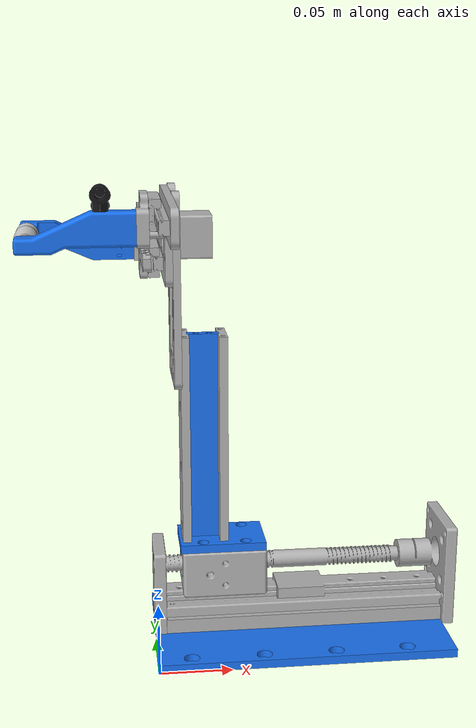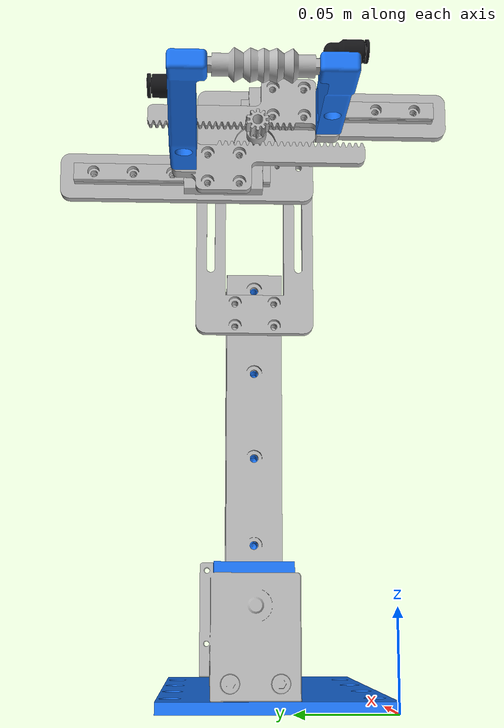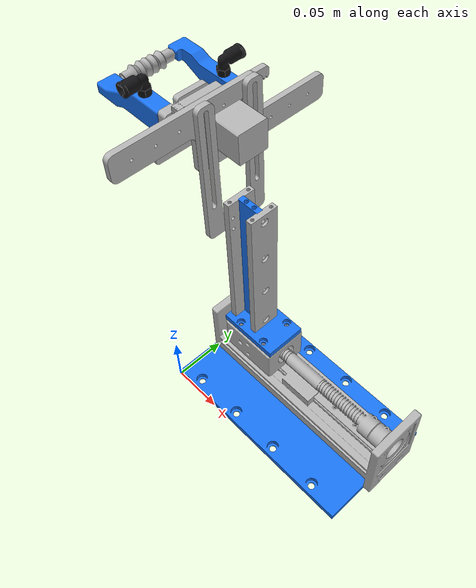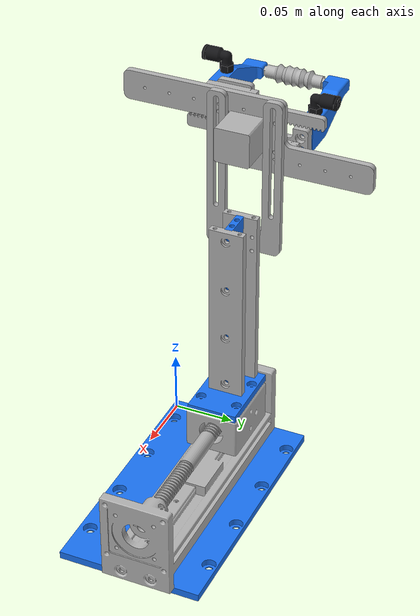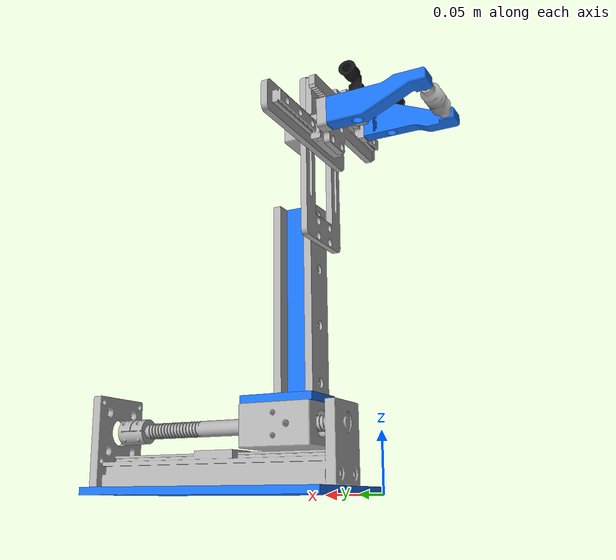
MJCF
<mujoco model="석션V1">
  <compiler angle="radian" />

  <asset>
    <mesh name="base_link" content_type="model/stl" file="meshes/base_link_ss.obj" scale="0.001 0.001 0.001" />
    <mesh name="LSM-NK174218-1204_100MM__1" content_type="model/stl" file="meshes/LSM-NK174218-1204_100MM__1_ss.obj" scale="0.001 0.001 0.001" />
    <mesh name="Dummy_1" content_type="model/stl" file="meshes/Dummy_1_ss.obj" scale="0.001 0.001 0.001" />
    <mesh name="Hbeam_B_1" content_type="model/stl" file="meshes/Hbeam_B_1_ss.obj" scale="0.001 0.001 0.001" />
    <mesh name="Hbeam_R_1" content_type="model/stl" file="meshes/Hbeam_R_1_ss.obj" scale="0.001 0.001 0.001" />
    <mesh name="Hbeam_L_1" content_type="model/stl" file="meshes/Hbeam_L_1_ss.obj" scale="0.001 0.001 0.001" />
    <mesh name="Hbeam_M_1" content_type="model/stl" file="meshes/Hbeam_M_1_ss.obj" scale="0.001 0.001 0.001" />
    <mesh name="Adjust_Plate_01_1" content_type="model/stl" file="meshes/Adjust_Plate_01_1_ss.obj" scale="0.001 0.001 0.001" />
    <mesh name="Plate_01_1" content_type="model/stl" file="meshes/Plate_01_1_ss.obj" scale="0.001 0.001 0.001" />
    <mesh name="Step_Motor_01_1" content_type="model/stl" file="meshes/Step_Motor_01_1_ss.obj" scale="0.001 0.001 0.001" />
    <mesh name="m1.0000mm_z10,_P0_1" content_type="model/stl" file="meshes/m1.0000mm_z10,_P0_1_ss.obj" scale="0.001 0.001 0.001" />
    <mesh name="R_E-SMLG9H-100-ES10_2_1" content_type="model/stl" file="meshes/R_E-SMLG9H-100-ES10_2_1_ss.obj" scale="0.001 0.001 0.001" />
    <mesh name="L_E-SMLG9H-100-ES10_2_1" content_type="model/stl" file="meshes/L_E-SMLG9H-100-ES10_2_1_ss.obj" scale="0.001 0.001 0.001" />
    <mesh name="m1.0000mm_z10_2" content_type="model/stl" file="meshes/m1.0000mm_z10_2_ss.obj" scale="0.001 0.001 0.001" />
    <mesh name="m1.0000mm_z10_1" content_type="model/stl" file="meshes/m1.0000mm_z10_1_ss.obj" scale="0.001 0.001 0.001" />
    <mesh name="Gripper_Tip_03_1" content_type="model/stl" file="meshes/Gripper_Tip_03_1_ss.obj" scale="0.001 0.001 0.001" />
    <mesh name="Gripper_Tip_03_2" content_type="model/stl" file="meshes/Gripper_Tip_03_2_ss.obj" scale="0.001 0.001 0.001" />
    <mesh name="GPL0601_2" content_type="model/stl" file="meshes/GPL0601_2_ss.obj" scale="0.001 0.001 0.001" />
    <mesh name="GPL0601_1" content_type="model/stl" file="meshes/GPL0601_1_ss.obj" scale="0.001 0.001 0.001" />
    <mesh name="Suction_Cup_M5_0.8mm_15mm_2" content_type="model/stl" file="meshes/Suction_Cup_M5_0.8mm_15mm_2_ss.obj" scale="0.001 0.001 0.001" />
    <mesh name="Suction_Cup_M5_0.8mm_15mm_1" content_type="model/stl" file="meshes/Suction_Cup_M5_0.8mm_15mm_1_ss.obj" scale="0.001 0.001 0.001" />
    <mesh name="L_E-SMLG9H-100-ES10_1_1" content_type="model/stl" file="meshes/L_E-SMLG9H-100-ES10_1_1_ss.obj" scale="0.001 0.001 0.001" />
    <mesh name="R_E-SMLG9H-100-ES10_1_1" content_type="model/stl" file="meshes/R_E-SMLG9H-100-ES10_1_1_ss.obj" scale="0.001 0.001 0.001" />
  <mesh name="Suction_Cup_M5_0.8mm_15mm_1_collision" file="meshes/Suction_Cup_M5_0.8mm_15mm_1.stl" scale="0.001 0.001 0.001" /><mesh name="Suction_Cup_M5_0.8mm_15mm_2_collision" file="meshes/Suction_Cup_M5_0.8mm_15mm_2.stl" scale="0.001 0.001 0.001" /></asset>

  <worldbody>
    <geom type="mesh" rgba="0.1 0.45 0.95 1" mesh="base_link" contype="0" conaffinity="0" />
    <geom type="mesh" rgba="0.7 0.7 0.7 1" mesh="LSM-NK174218-1204_100MM__1" contype="0" conaffinity="0" />
    <body name="Dummy_1" pos="0.079095 0.0675 0.0505">
      <inertial pos="-0.0370876 -0.0300576 0.0785227" quat="0.641213 0.761307 -0.0957904 0.00906535" mass="0.367875" diaginertia="0.00482764 0.00270782 0.00239686" />
      <joint name="LSM-NK174218-1204_100MM__1_Dummy_1" pos="0 0 0" axis="1 0 0" type="slide" actuatorfrcrange="-100 100" />
      <geom pos="-0.079095 -0.0675 -0.0505" quat="1 0 0 0" type="mesh" rgba="0.7 0.7 0.7 1" mesh="Dummy_1" contype="0" conaffinity="0" />
      <geom pos="-0.079095 -0.0675 -0.0505" quat="1 0 0 0" type="mesh" rgba="0.1 0.45 0.95 1" mesh="Hbeam_B_1" contype="0" conaffinity="0" />
      <geom pos="-0.079095 -0.0675 -0.0505" type="mesh" rgba="0.7 0.7 0.7 1" mesh="Hbeam_R_1" contype="0" conaffinity="0" />
      <geom pos="-0.079095 -0.0675 -0.0505" type="mesh" rgba="0.7 0.7 0.7 1" mesh="Adjust_Plate_01_1" contype="0" conaffinity="0" />
      <geom pos="-0.079095 -0.0675 -0.0505" quat="1 0 0 0" type="mesh" rgba="0.7 0.7 0.7 1" mesh="Plate_01_1" contype="0" conaffinity="0" />
      <geom pos="-0.079095 -0.0675 -0.0505" quat="1 0 0 0" type="mesh" rgba="0.7 0.7 0.7 1" mesh="Step_Motor_01_1" contype="0" conaffinity="0" />
      <geom pos="-0.079095 -0.0675 -0.0505" quat="1 0 0 0" type="mesh" rgba="0.7 0.7 0.7 1" mesh="m1.0000mm_z10,_P0_1" contype="0" conaffinity="0" />
      <geom pos="-0.079095 -0.0675 -0.0505" quat="1 0 0 0" type="mesh" rgba="0.7 0.7 0.7 1" mesh="L_E-SMLG9H-100-ES10_1_1" contype="0" conaffinity="0" />
      <geom pos="-0.079095 -0.0675 -0.0505" quat="1 0 0 0" type="mesh" rgba="0.7 0.7 0.7 1" mesh="R_E-SMLG9H-100-ES10_1_1" contype="0" conaffinity="0" />
      <geom pos="-0.079095 -0.0675 -0.0505" type="mesh" rgba="0.7 0.7 0.7 1" mesh="Hbeam_L_1" contype="0" conaffinity="0" />
      <geom pos="-0.079095 -0.0675 -0.0505" quat="1 0 0 0" type="mesh" rgba="0.1 0.45 0.95 1" mesh="Hbeam_M_1" contype="0" conaffinity="0" />
      <body name="L_E-SMLG9H-100-ES10_2_1" pos="-0.073 0.00345 0.257039">
        <inertial pos="-0.0168996 0.00383107 -0.0219068" quat="0.481628 0.531095 -0.414129 0.560776" mass="0.083123" diaginertia="0.000109298 8.50411e-05 3.71004e-05" />
        <joint name="L_E-SMLG9H-100-ES10_1_1_L_E-SMLG9H-100-ES10_2_1" pos="0 0 0" axis="0 1 0" type="slide" actuatorfrcrange="-100 100" limited="true" range="-0.05 0" />
        <geom pos="-0.006095 -0.07095 -0.307539" quat="1 0 0 0" type="mesh" rgba="0.7 0.7 0.7 1" mesh="L_E-SMLG9H-100-ES10_2_1" contype="0" conaffinity="0" />
        <geom pos="-0.006095 -0.07095 -0.307539" quat="1 0 0 0" type="mesh" rgba="0.7 0.7 0.7 1" mesh="m1.0000mm_z10_2" contype="0" conaffinity="0" />
        <geom pos="-0.006095 -0.07095 -0.307539" quat="1 0 0 0" type="mesh" rgba="0.1 0.45 0.95 1" mesh="Gripper_Tip_03_1" contype="0" conaffinity="0" />
        <geom pos="-0.006095 -0.07095 -0.307539" quat="1 0 0 0" type="mesh" rgba="0.08 0.08 0.09 1" mesh="GPL0601_1" contype="0" conaffinity="0" />
        <geom pos="-0.006095 -0.07095 -0.307539" quat="1 0 0 0" type="mesh" rgba="0.7 0.7 0.7 1" mesh="Suction_Cup_M5_0.8mm_15mm_1" contype="0" conaffinity="0" group="1" />
      <geom pos="-0.006095 -0.07095 -0.307539" quat="1 0 0 0" type="mesh" rgba="0.7 0.7 0.7 1" mesh="Suction_Cup_M5_0.8mm_15mm_1_collision" contype="1" conaffinity="1" group="0" /></body>
      <body name="R_E-SMLG9H-100-ES10_2_1" pos="-0.073 -0.00345 0.221039">
        <inertial pos="-0.0149706 -0.0202317 0.0161774" quat="0.231608 0.312507 -0.654221 0.648608" mass="0.083123" diaginertia="0.000107572 9.19687e-05 5.18104e-05" />
        <joint name="R_E-SMLG9H-100-ES10_1_1_R_E-SMLG9H-100-ES10_2_1" pos="0 0 0" axis="0 -1 0" type="slide" actuatorfrcrange="-100 100" limited="true" range="-0.05 0" />
        <geom pos="-0.006095 -0.06405 -0.271539" quat="1 0 0 0" type="mesh" rgba="0.7 0.7 0.7 1" mesh="R_E-SMLG9H-100-ES10_2_1" contype="0" conaffinity="0" />
        <geom pos="-0.006095 -0.06405 -0.271539" quat="1 0 0 0" type="mesh" rgba="0.7 0.7 0.7 1" mesh="m1.0000mm_z10_1" contype="0" conaffinity="0" />
        <geom pos="-0.006095 -0.06405 -0.271539" quat="1 0 0 0" type="mesh" rgba="0.1 0.45 0.95 1" mesh="Gripper_Tip_03_2" contype="0" conaffinity="0" />
        <geom pos="-0.006095 -0.06405 -0.271539" quat="1 0 0 0" type="mesh" rgba="0.08 0.08 0.09 1" mesh="GPL0601_2" contype="0" conaffinity="0" />
        <geom pos="-0.006095 -0.06405 -0.271539" quat="1 0 0 0" type="mesh" rgba="0.7 0.7 0.7 1" mesh="Suction_Cup_M5_0.8mm_15mm_2" contype="0" conaffinity="0" group="1" />
      <geom pos="-0.006095 -0.06405 -0.271539" quat="1 0 0 0" type="mesh" rgba="0.7 0.7 0.7 1" mesh="Suction_Cup_M5_0.8mm_15mm_2_collision" contype="1" conaffinity="1" group="0" /></body>
    </body>
  </worldbody>

  <equality>
    <joint joint1="R_E-SMLG9H-100-ES10_1_1_R_E-SMLG9H-100-ES10_2_1" joint2="L_E-SMLG9H-100-ES10_1_1_L_E-SMLG9H-100-ES10_2_1" polycoef="0 1 0 0 0" />
  </equality>
</mujoco>
